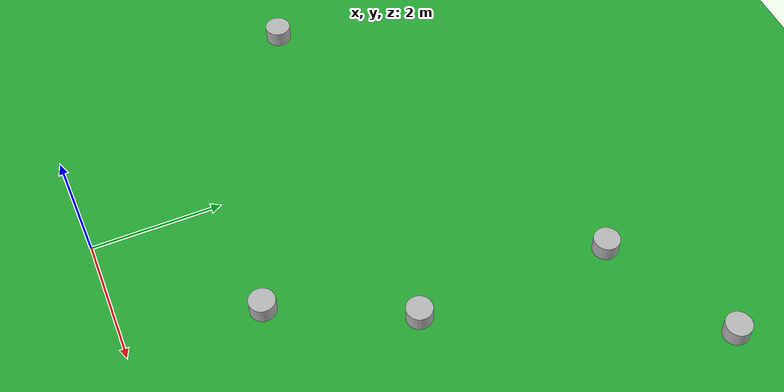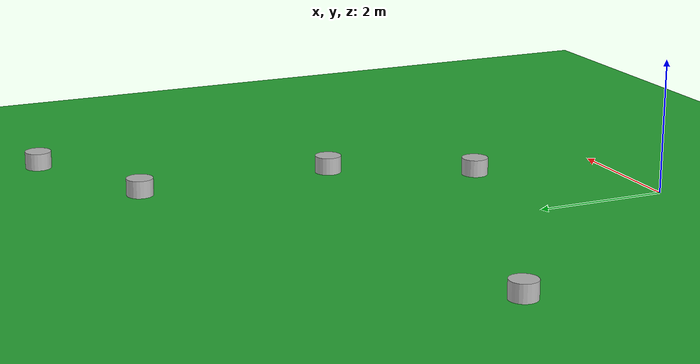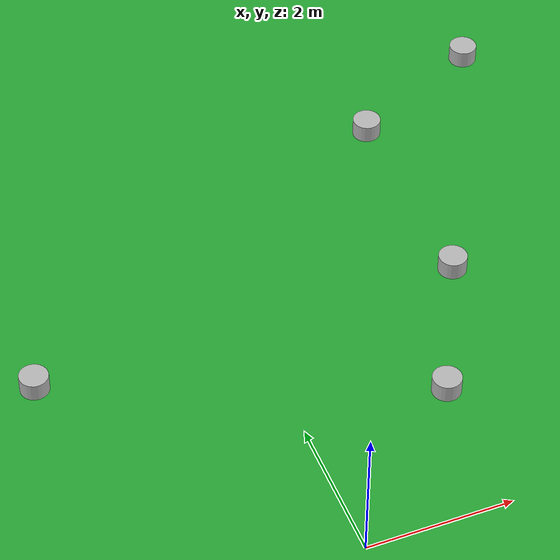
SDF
<sdf version='1.7'>
<world name='default'>
<!-- Light source -->
  <include>
    <uri>model://sun</uri>
  </include>

<model name="green_plane">
  <static>true</static>
    <link name="link">
      <collision name="collision">
        <geometry>
          <plane>
            <normal>0 0 1</normal>
            <size>80 80</size>
          </plane>
        </geometry>
      </collision>
      <visual name="visual">
        <cast_shadows>false</cast_shadows>
        <geometry>
          <plane>
            <normal>0 0 1</normal>
            <size>80 80</size>
          </plane>
        </geometry>
        <material>
            <script>
              <uri>file://media/materials/scripts/gazebo.material</uri>
              <name>Gazebo/Green</name>
            </script>
          </material>
      </visual>
    </link>
  </model>
      <model name="cylinder1">
      <pose>2 2 0 0 0 0</pose>
      <link name="link">
        <collision name="collision">
          <geometry>
            <cylinder>
              <radius>0.2</radius>
              <length>0.5</length>
            </cylinder>
          </geometry>
        </collision>
        <visual name="visual">
          <geometry>
            <cylinder>
              <radius>0.2</radius>
              <length>0.5</length>
            </cylinder>
          </geometry>
        </visual>
      </link>
    </model>
      <model name="cylinder2">
      <pose>-3 4 0 0 0 0</pose>
      <link name="link">
        <collision name="collision">
          <geometry>
            <cylinder>
              <radius>0.2</radius>
              <length>0.5</length>
            </cylinder>
          </geometry>
        </collision>
        <visual name="visual">
          <geometry>
            <cylinder>
              <radius>0.2</radius>
              <length>0.5</length>
            </cylinder>
          </geometry>
        </visual>
      </link>
    </model>
      <model name="cylinder3">
      <pose>5 8 0 0 0 0</pose>
      <link name="link">
        <collision name="collision">
          <geometry>
            <cylinder>
              <radius>0.2</radius>
              <length>0.5</length>
            </cylinder>
          </geometry>
        </collision>
        <visual name="visual">
          <geometry>
            <cylinder>
              <radius>0.2</radius>
              <length>0.5</length>
            </cylinder>
          </geometry>
        </visual>
      </link>
    </model>
        <model name="cylinder4">
      <pose>3 7 0 0 0 0</pose>
      <link name="link">
        <collision name="collision">
          <geometry>
            <cylinder>
              <radius>0.2</radius>
              <length>0.5</length>
            </cylinder>
          </geometry>
        </collision>
        <visual name="visual">
          <geometry>
            <cylinder>
              <radius>0.2</radius>
              <length>0.5</length>
            </cylinder>
          </geometry>
        </visual>
      </link>
    </model>
        <model name="cylinder5">
      <pose>3 4 0 0 0 0</pose>
      <link name="link">
        <collision name="collision">
          <geometry>
            <cylinder>
              <radius>0.2</radius>
              <length>0.5</length>
            </cylinder>
          </geometry>
        </collision>
        <visual name="visual">
          <geometry>
            <cylinder>
              <radius>0.2</radius>
              <length>0.5</length>
            </cylinder>
          </geometry>
        </visual>
      </link>
    </model>

  </world>
</sdf>
